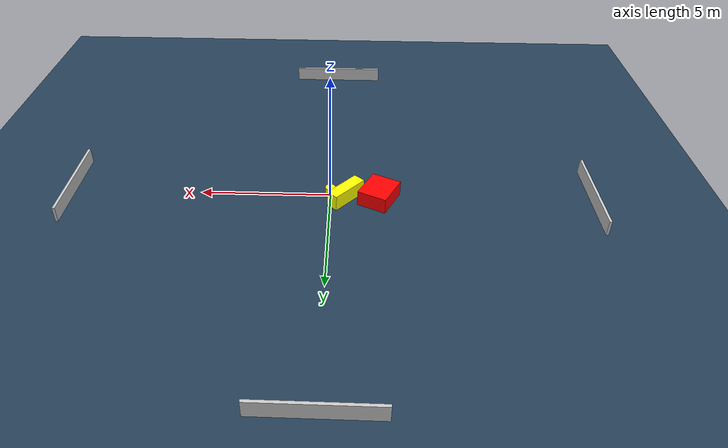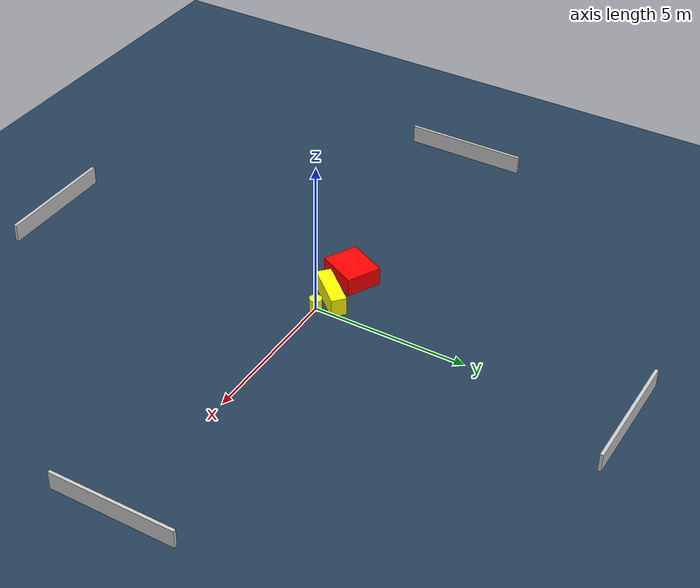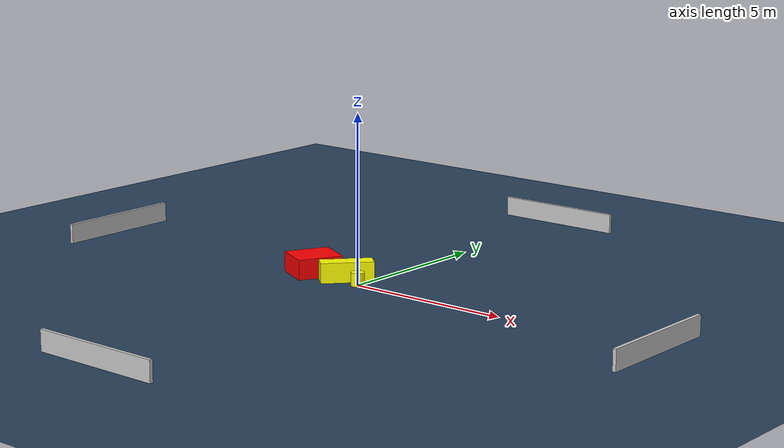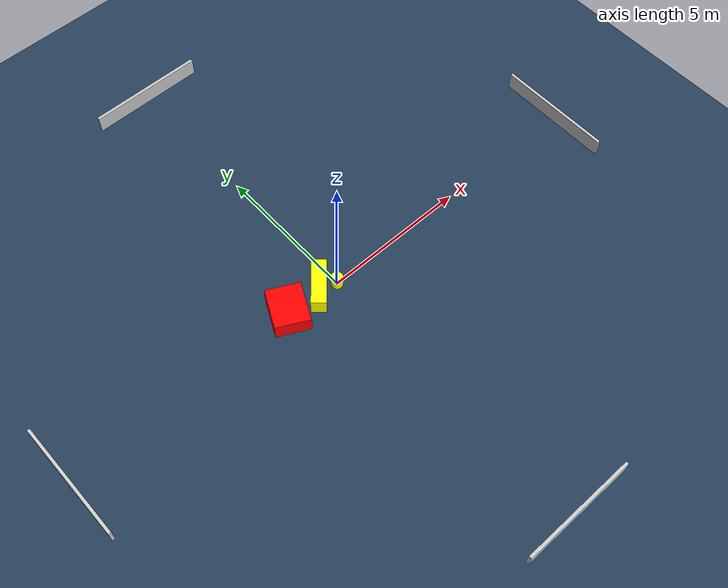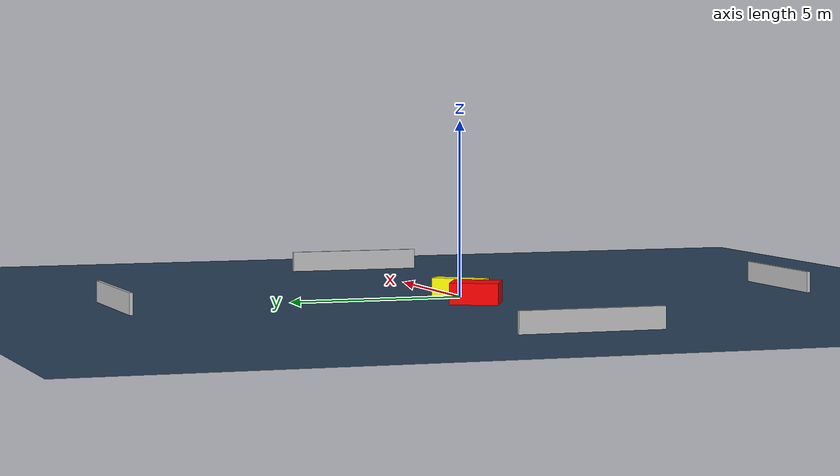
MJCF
<?xml version="1.0" ?>
<mujoco model="generated_environment">
  <option timestep="0.01" integrator="RK4" cone="elliptic"/>
  <default>
    <geom density="1"/>
  </default>
  <asset>
    <texture builtin="gradient" height="3072" name="skybox" rgb1="0.3 0.5 0.7" rgb2="0 0 0" type="skybox" width="512"/>
    <texture builtin="checker" height="300" name="groundplane" rgb1="0.2 0.3 0.4" rgb2="0.1 0.2 0.3" type="2d" width="300"/>
    <material name="groundplane" reflectance="0.2" texrepeat="5 5" texture="groundplane"/>
  </asset>
  <worldbody>
    <light dir="0 0 -1" directional="true" pos="0 0 1.5"/>
    <geom condim="3" friction="0.5 0.005 0.001" material="groundplane" name="floor" pos="0 0 0" size="0 0 0.05" type="plane"/>
    <body name="walls">
      <geom name="wall_1" condim="4" pos="-10.0 0.0 0.3" rgba="0.800000011920929 0.800000011920929 0.800000011920929 1.0" size="0.05 2.0 0.3" type="box"/>
      <geom name="wall_2" condim="4" pos="10.0 0.0 0.3" rgba="0.800000011920929 0.800000011920929 0.800000011920929 1.0" size="0.05 2.0 0.3" type="box"/>
      <geom name="wall_3" condim="4" pos="0.0 -10.0 0.3" rgba="0.800000011920929 0.800000011920929 0.800000011920929 1.0" size="2.0 0.05 0.3" type="box"/>
      <geom name="wall_4" condim="4" pos="0.0 10.0 0.3" rgba="0.800000011920929 0.800000011920929 0.800000011920929 1.0" size="2.0 0.05 0.3" type="box"/>
    </body>
    <body name="robot">
      <joint name="joint_x" type="slide" pos="0 0 0" axis="1 0 0"/>
      <joint name="joint_y" type="slide" pos="0 0 0" axis="0 1 0"/>
      <geom name="robot" type="cylinder" pos="0.0 0.0 0.2" size="0.2 0.2 0.0" mass="5.0" friction="1.0 0.005 0.0001" condim="4" rgba="1.0 1.0 0.0 1.0"/>
    </body>
    <body name="obstacle_1_movable">
      <geom name="obstacle_1_movable" condim="4" pos="-0.5884168380030061 0.19088695273866402 0.3" euler="0 0 48.35908760948753" friction="0.0 0.005 0.001" rgba="1.0 1.0 0.0 1.0" size="0.7788033413352962 0.24324773561049742 0.3" type="box" mass="0.1"/>
      <joint type="free"/>
    </body>
    <body name="obstacle_2_static">
      <geom name="obstacle_2_static" condim="4" pos="-1.8549791167834866 0.18030059242149968 0.3" euler="0 0 153.4742726456864" friction="0.0 0.005 0.001" rgba="1.0 0.0 0.0 1.0" size="0.5789893184870605 0.6806062216640818 0.3" type="box"/>
    </body>
  </worldbody>
  <actuator>
    <motor name="actuator_x" joint="joint_x" gear="1" ctrlrange="-1 1"/>
    <motor name="actuator_y" joint="joint_y" gear="1" ctrlrange="-1 1"/>
  </actuator>
</mujoco>
